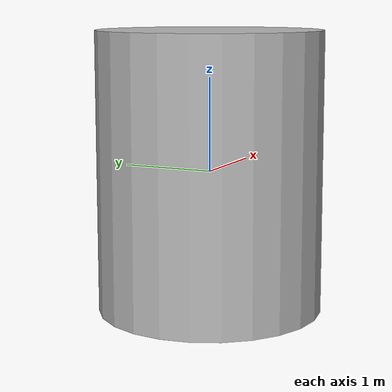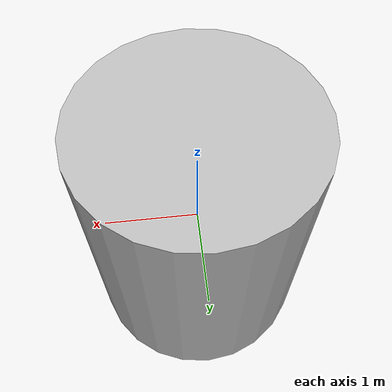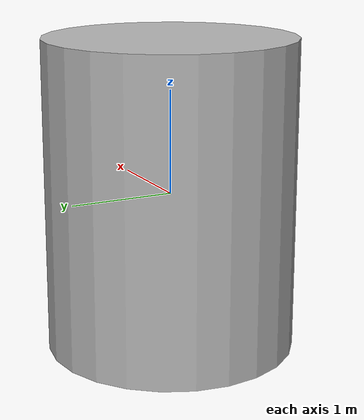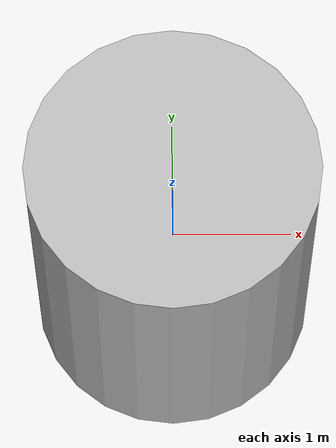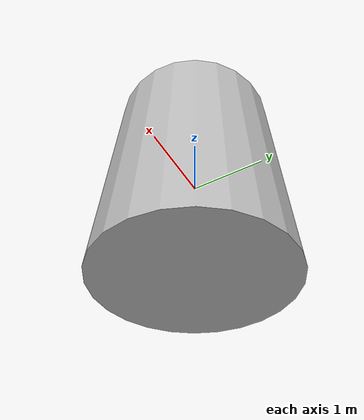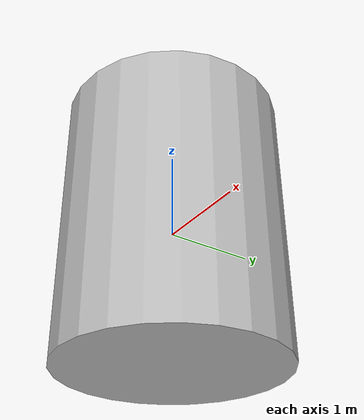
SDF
<?xml version="1.0"?>
<sdf version="1.6">
  <model name="checkerboard_target">
    <static>true</static>
    <link name="target_link">
      <pose>0 0 0 0 0 0</pose>
      <collision name="collision">
        <geometry>
          <cylinder>
            <radius>1.2</radius>
            <length>3.0</length>
          </cylinder>
        </geometry>
        <surface>
          <contact>
            <ode/>
          </contact>
        </surface>
      </collision>
      <visual name="visual">
        <geometry>
          <cylinder>
            <radius>1.2</radius>
            <length>3.0</length>
          </cylinder>
        </geometry>
        <material>
          <script>
            <uri>model://checkerboard_target/materials/scripts</uri>
            <uri>model://checkerboard_target/materials/textures</uri>
            <name>Checkerboard/Pattern</name>
          </script>
        </material>
      </visual>
    </link>
  </model>
</sdf>
